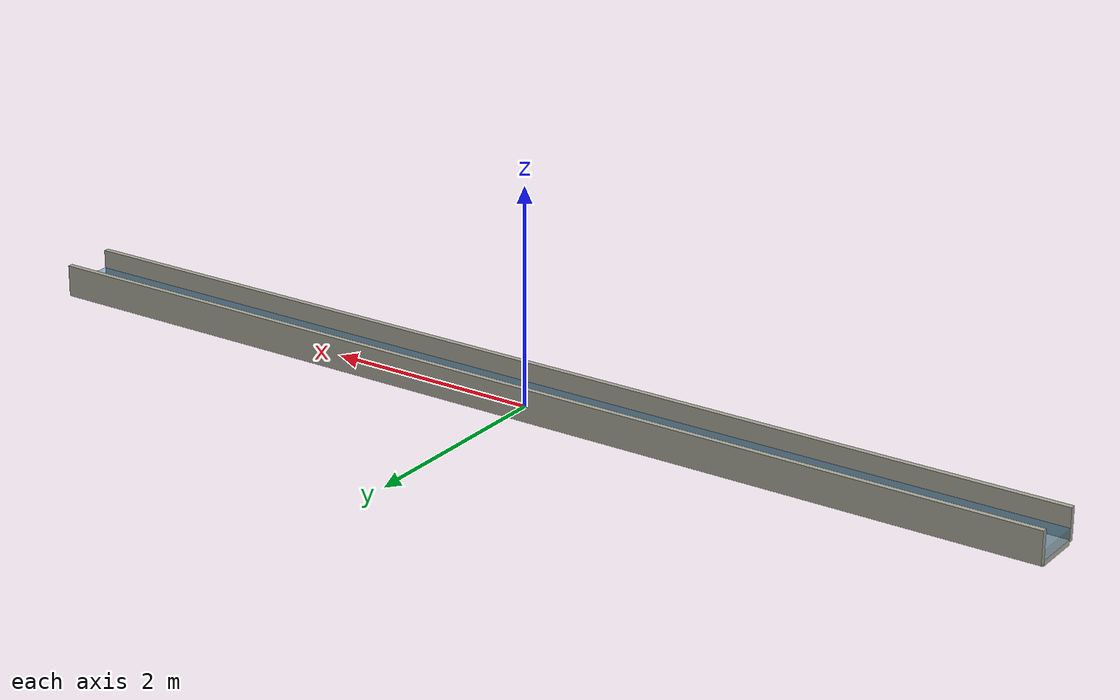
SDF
<?xml version="1.0"?>
<sdf version="1.9">
  <model name="drain_channel">
    <static>true</static>

    <!--  DRAIN FLOOR                                                 -->
    <!--  Concrete U-channel: 450mm wide, 10m long                    -->
    <link name="floor">
      <pose>0 0 0 0 0 0</pose>

      <collision name="floor_collision">
        <geometry>
          <box>
            <size>10.0 0.45 0.05</size>
          </box>
        </geometry>
        <surface>
          <friction>
            <ode>
              <mu>0.5</mu>
              <mu2>0.5</mu2>
            </ode>
          </friction>
        </surface>
      </collision>

      <visual name="floor_visual">
        <geometry>
          <box>
            <size>10.0 0.45 0.05</size>
          </box>
        </geometry>
        <material>
          <ambient>0.6 0.6 0.55 1</ambient>
          <diffuse>0.7 0.7 0.65 1</diffuse>
          <specular>0.1 0.1 0.1 1</specular>
        </material>
      </visual>
    </link>

    <!--  LEFT WALL (300mm high)                                      -->
    <link name="left_wall">
      <pose>0 0.25 0.15 0 0 0</pose>

      <collision name="left_wall_collision">
        <geometry>
          <box>
            <size>10.0 0.05 0.30</size>
          </box>
        </geometry>
      </collision>

      <visual name="left_wall_visual">
        <geometry>
          <box>
            <size>10.0 0.05 0.30</size>
          </box>
        </geometry>
        <material>
          <ambient>0.55 0.55 0.50 1</ambient>
          <diffuse>0.65 0.65 0.60 1</diffuse>
          <specular>0.1 0.1 0.1 1</specular>
        </material>
      </visual>
    </link>

    <!--  RIGHT WALL (300mm high)                                     -->
    <link name="right_wall">
      <pose>0 -0.25 0.15 0 0 0</pose>

      <collision name="right_wall_collision">
        <geometry>
          <box>
            <size>10.0 0.05 0.30</size>
          </box>
        </geometry>
      </collision>

      <visual name="right_wall_visual">
        <geometry>
          <box>
            <size>10.0 0.05 0.30</size>
          </box>
        </geometry>
        <material>
          <ambient>0.55 0.55 0.50 1</ambient>
          <diffuse>0.65 0.65 0.60 1</diffuse>
          <specular>0.1 0.1 0.1 1</specular>
        </material>
      </visual>
    </link>

    <!--  SHALLOW WATER (visual only, 10cm depth)                     -->
    <!--  Transparent blue layer on drain floor                       -->
    <link name="water">
      <pose>0 0 0.075 0 0 0</pose>

      <visual name="water_visual">
        <geometry>
          <box>
            <size>10.0 0.45 0.10</size>
          </box>
        </geometry>
        <material>
          <ambient>0.1 0.3 0.5 0.4</ambient>
          <diffuse>0.15 0.4 0.6 0.4</diffuse>
          <specular>0.5 0.5 0.5 1</specular>
        </material>
        <transparency>0.6</transparency>
      </visual>
    </link>

    <!--  ALGAE PATCHES (visual — green discoloration on floor)       -->
    <link name="algae_patch_1">
      <pose>1.5 0.05 0.026 0 0 0</pose>
      <visual name="algae_1_visual">
        <geometry>
          <box>
            <size>0.8 0.30 0.002</size>
          </box>
        </geometry>
        <material>
          <ambient>0.1 0.4 0.1 1</ambient>
          <diffuse>0.15 0.5 0.15 1</diffuse>
        </material>
      </visual>
    </link>

    <link name="algae_patch_2">
      <pose>-2.0 -0.05 0.026 0 0 0.15</pose>
      <visual name="algae_2_visual">
        <geometry>
          <box>
            <size>1.2 0.25 0.002</size>
          </box>
        </geometry>
        <material>
          <ambient>0.08 0.35 0.08 1</ambient>
          <diffuse>0.12 0.45 0.12 1</diffuse>
        </material>
      </visual>
    </link>

  </model>
</sdf>
